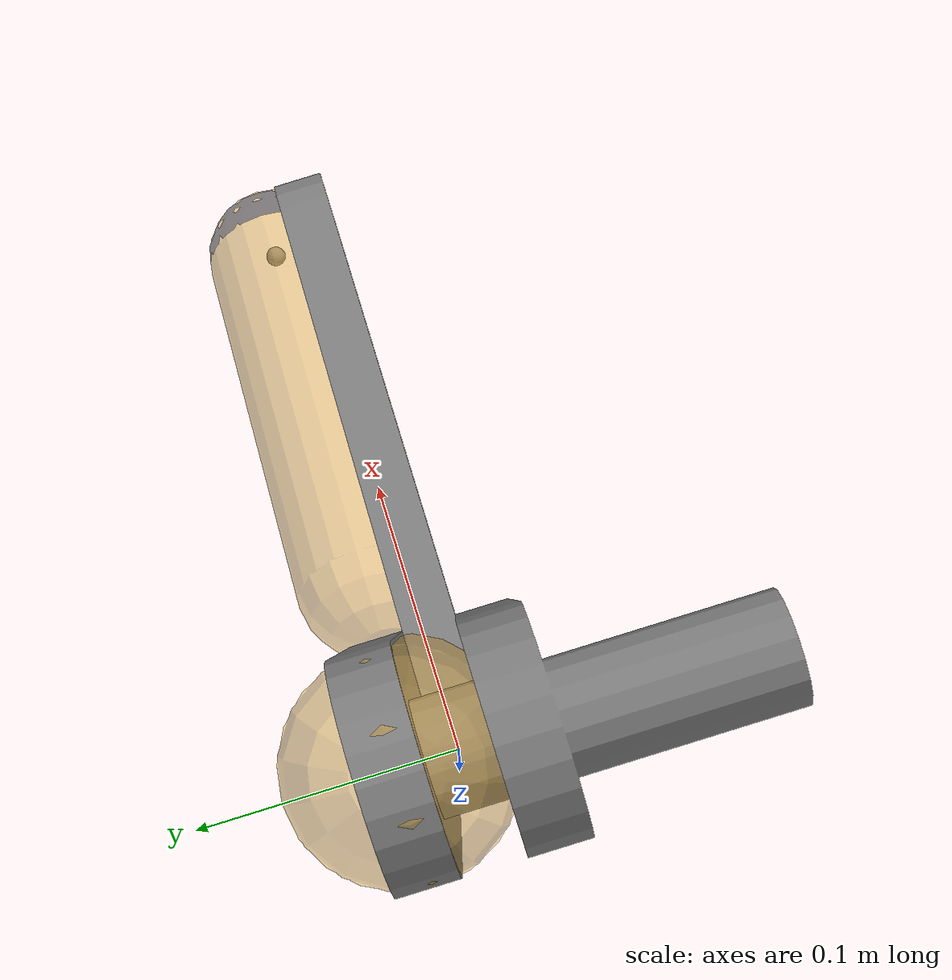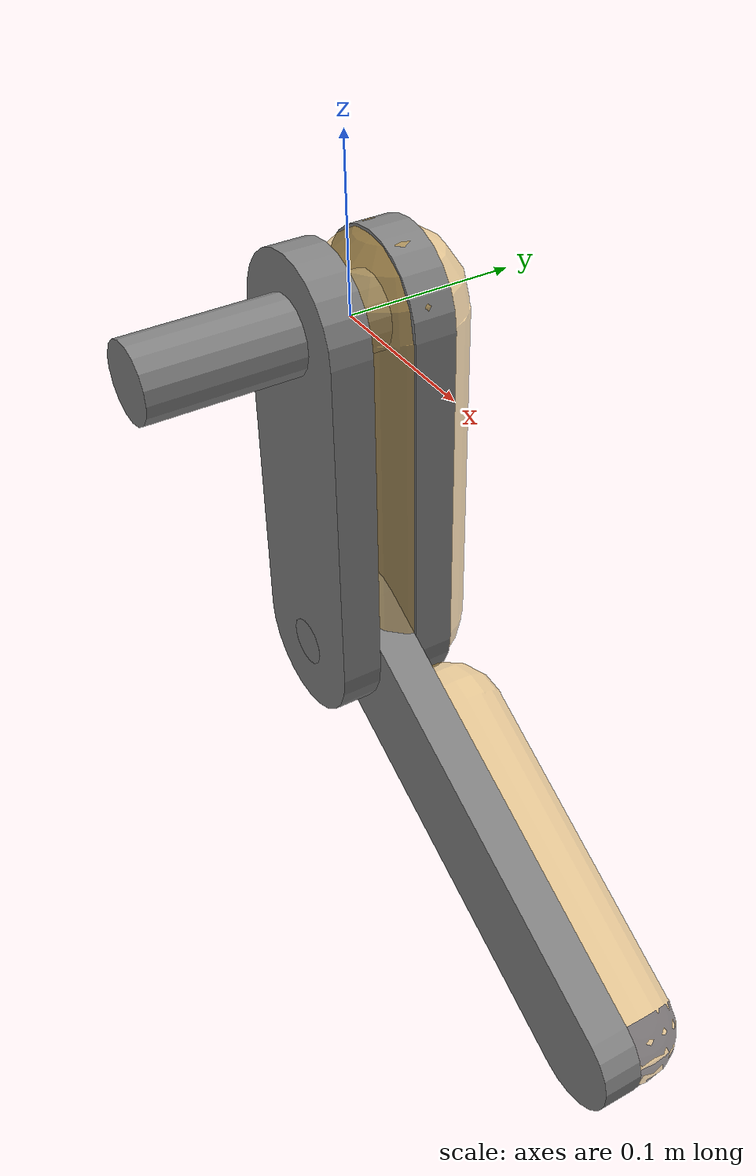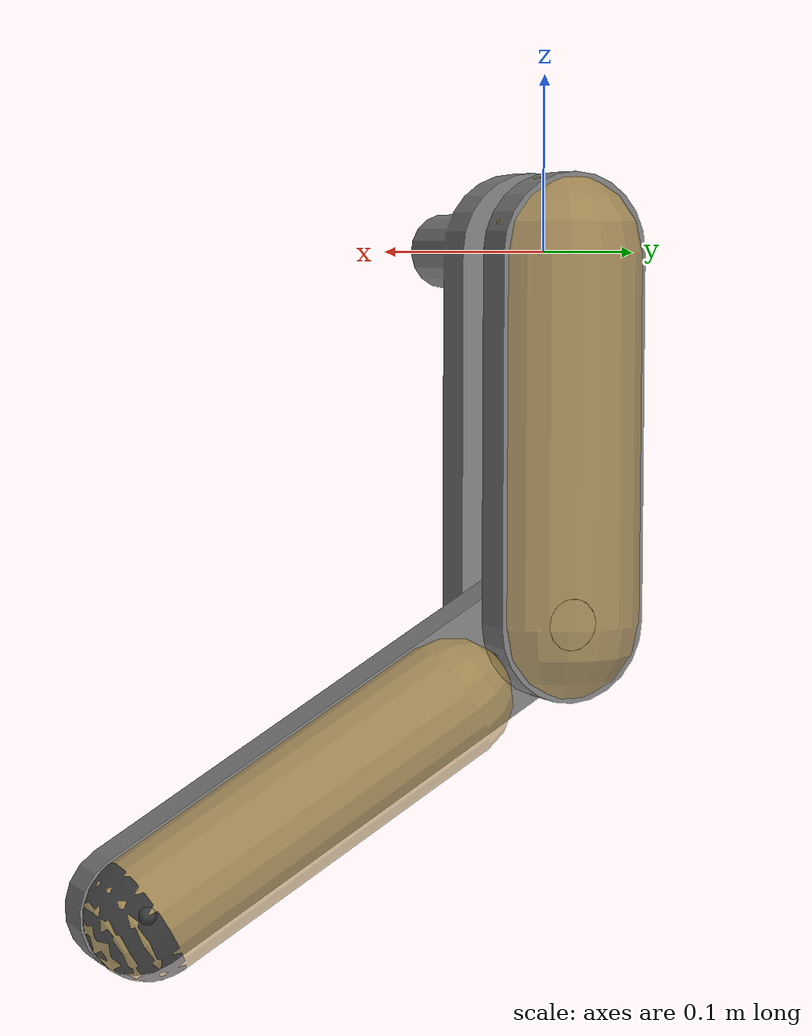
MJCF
<mujoco model="cheetah">
  <compiler angle="radian" meshdir="meshes/" inertiafromgeom="false"/>

  <asset>
    <mesh name="fl_hip" file="fl_hip.STL"/>
    <mesh name="fl_knee" file="fl_knee.STL"/>
  </asset>

  <worldbody>
    <body name="fl_hip">
      <inertial pos="0 -0.0083713 -0.088755" quat="0.997892 0.0648985 0 0" mass="0.42319" diaginertia="0.0034493 0.00319477 0.000746558"/>
      <joint name="fl_hip_joint" pos="0 0 0" axis="0 1 0"/>
      <geom type="mesh" mesh="fl_hip"/>
      <geom type="capsule" size="0.045" fromto="0 0.0225 0 0 0.0225 -0.21" group="0" contype="1" conaffinity="1"  rgba="0.85 0.65 0.25 0.5"/>
      <body name="fl_knee" pos="0 0 -0.21" quat="0.965926 0 0.25882 0">
        <inertial pos="0.13698 0 0" quat="0.5 0.5 0.5 0.5" mass="0.19172" diaginertia="0.0020898 0.0020349 8.8217e-05"/>
        <joint name="fl_knee_joint" pos="0 0 0" axis="0 1 0"/>
        <geom type="mesh" mesh="fl_knee"/>
        <geom type="capsule" size="0.035" fromto="0.08 0.0225 0 0.29 0.0225 0" group="0" contype="1" conaffinity="1"  rgba="0.85 0.65 0.25 0.5"/>
        <body name="fl_foot" pos="0.29 0.0225 0">
          <inertial pos="0 0 0" mass="0.001" diaginertia="0.001 0.001 0.001"/>
          <geom group="1" type="sphere" size="0.035" solimp="0.015 1 0.031" friction="0.8 0.02 0.01" rgba="0 0 0 0.5"/>
          <site name="fl_foot"/>
        </body>
      </body>
    </body>
  </worldbody>

  <actuator>
    <general name="fl_hip_act" joint="fl_hip_joint"/>
    <general name="fl_knee_act" joint="fl_knee_joint"/>
  </actuator>

  <sensor>
    <jointpos joint="fl_hip_joint" name="fl_hip_pos"/>
    <jointpos joint="fl_knee_joint" name="fl_knee_pos"/>
    <jointvel joint="fl_hip_joint" name="fl_hip_vel"/>
    <jointvel joint="fl_knee_joint" name="fl_knee_vel"/>
  </sensor>
</mujoco>
